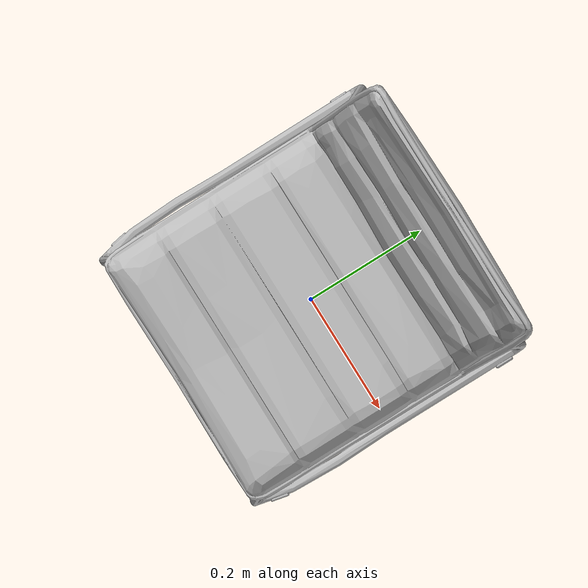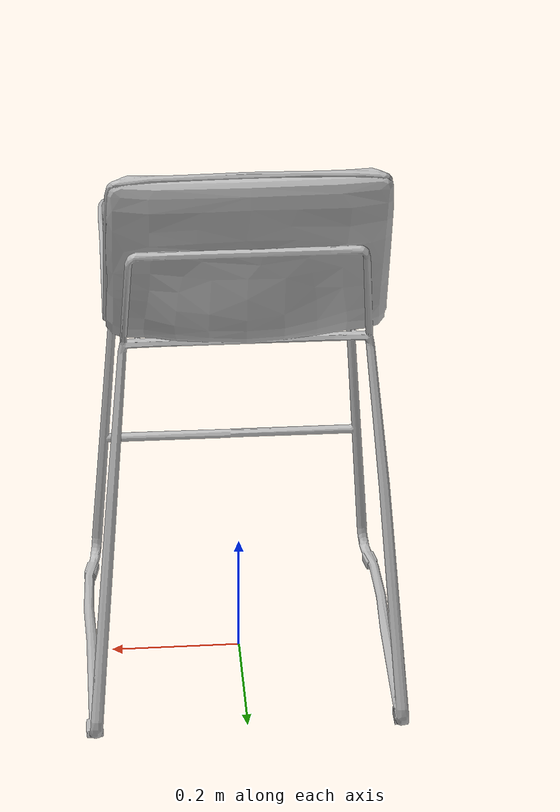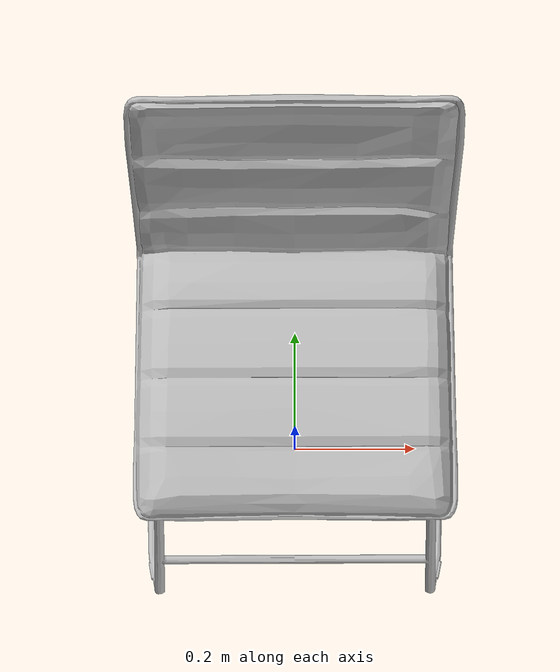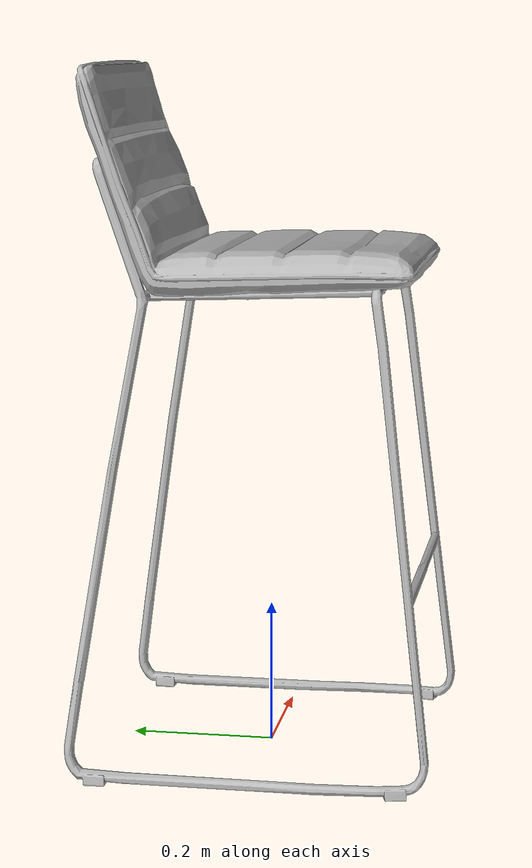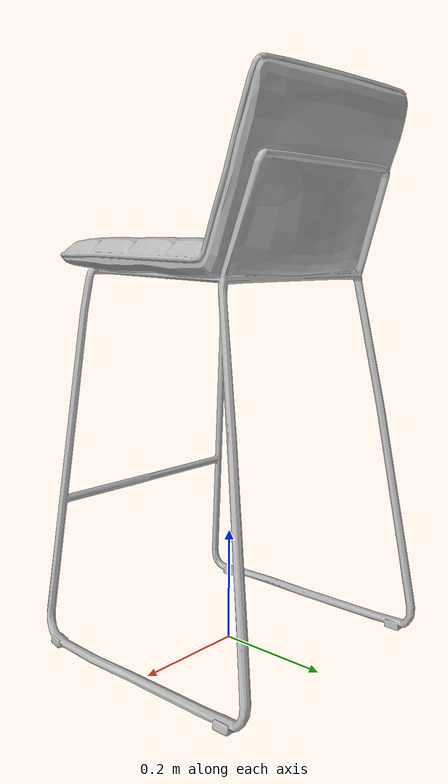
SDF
<sdf version="1.6">
	<model name="Barstools_Oa4fba5f9c131_lod0">
		<link name="main_link">
			<visual name="visual_RootNode">
				<geometry>
					<mesh>
						<uri>model://Barstools_Oa4fba5f9c131_lod0/meshes/visual_RootNode.dae</uri>
					</mesh>
				</geometry>
			</visual>
			<collision name="collision_RootNode_lod0_0">
				<geometry>
					<mesh>
						<uri>model://Barstools_Oa4fba5f9c131_lod0/meshes/collision_RootNode_lod0_0.dae</uri>
					</mesh>
				</geometry>
			</collision>
		</link>
	</model>
</sdf>
